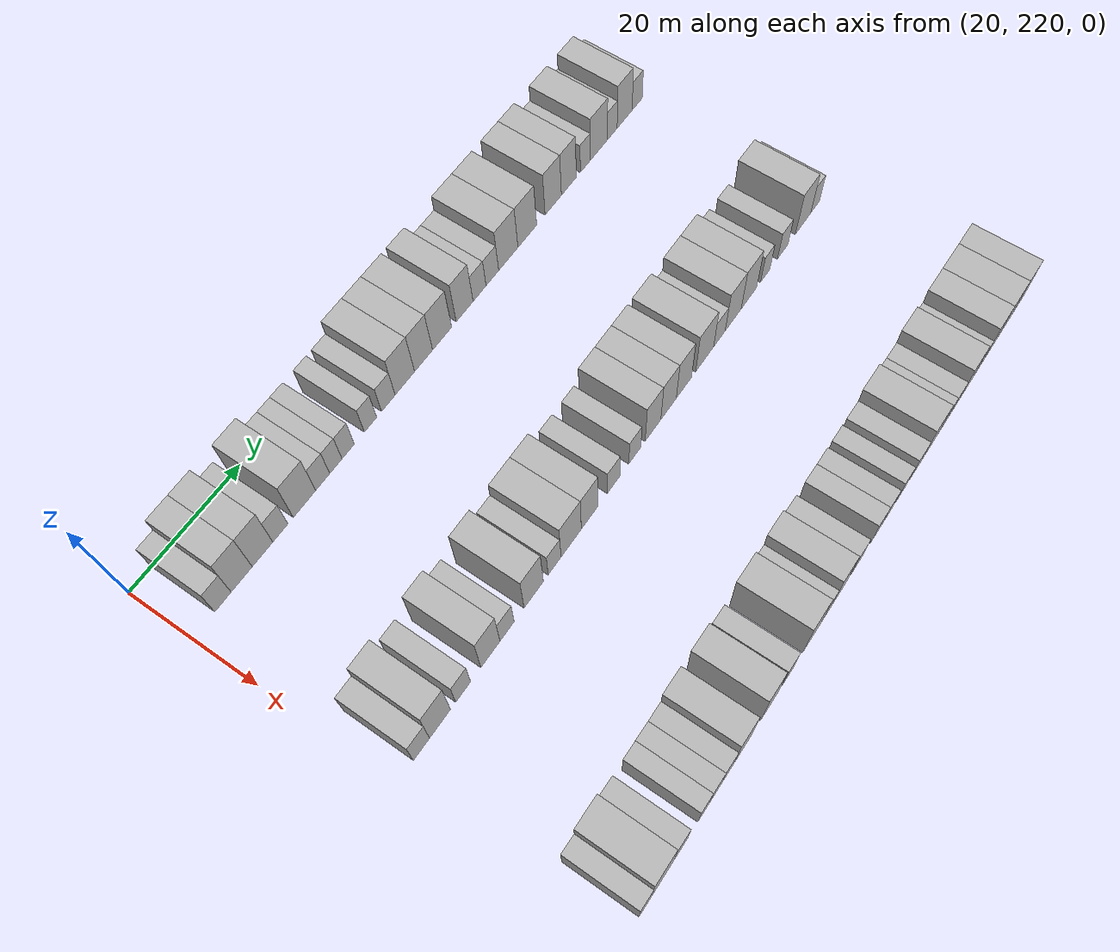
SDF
<sdf version="1.6">
 <world name="default">
  <model name="building_164">
   <static>1</static>
   <pose>25.0000 225.3458 0 0.000000 0.000000 0.000000</pose>
   <link name="link">
    <pose>0 0 3.00 0 0 0</pose>
    <collision name="collision"><geometry><box><size>10.0000 2.9316 6.0000</size></box></geometry></collision>
    <visual name="visual">
     <cast_shadows>0</cast_shadows>
     <geometry><box><size>10.0000 2.9316 6.0000</size></box></geometry>
     <material>
      <script>
       <uri>model://HANNAS_wall/materials/scripts</uri>
       <uri>model://HANNAS_wall/materials/textures</uri>
       <name>vrc/HANNAS_wall</name>
      </script>
     </material>
    </visual>
   </link>
  </model>
  <model name="building_165">
   <static>1</static>
   <pose>25.0000 228.7253 0 0.000000 0.000000 0.000000</pose>
   <link name="link">
    <pose>0 0 4.50 0 0 0</pose>
    <collision name="collision"><geometry><box><size>10.0000 3.8275 9.0000</size></box></geometry></collision>
    <visual name="visual">
     <cast_shadows>0</cast_shadows>
     <geometry><box><size>10.0000 3.8275 9.0000</size></box></geometry>
     <material>
      <script>
       <uri>model://HANNAS_wall/materials/scripts</uri>
       <uri>model://HANNAS_wall/materials/textures</uri>
       <name>vrc/HANNAS_wall</name>
      </script>
     </material>
    </visual>
   </link>
  </model>
  <model name="building_166">
   <static>1</static>
   <pose>25.0000 232.5370 0 0.000000 0.000000 0.000000</pose>
   <link name="link">
    <pose>0 0 4.50 0 0 0</pose>
    <collision name="collision"><geometry><box><size>10.0000 3.7959 9.0000</size></box></geometry></collision>
    <visual name="visual">
     <cast_shadows>0</cast_shadows>
     <geometry><box><size>10.0000 3.7959 9.0000</size></box></geometry>
     <material>
      <script>
       <uri>model://HANNAS_wall/materials/scripts</uri>
       <uri>model://HANNAS_wall/materials/textures</uri>
       <name>vrc/HANNAS_wall</name>
      </script>
     </material>
    </visual>
   </link>
  </model>
  <model name="building_167">
   <static>1</static>
   <pose>25.0000 235.8538 0 0.000000 0.000000 0.000000</pose>
   <link name="link">
    <pose>0 0 3.00 0 0 0</pose>
    <collision name="collision"><geometry><box><size>10.0000 2.8376 6.0000</size></box></geometry></collision>
    <visual name="visual">
     <cast_shadows>0</cast_shadows>
     <geometry><box><size>10.0000 2.8376 6.0000</size></box></geometry>
     <material>
      <script>
       <uri>model://HANNAS_wall/materials/scripts</uri>
       <uri>model://HANNAS_wall/materials/textures</uri>
       <name>vrc/HANNAS_wall</name>
      </script>
     </material>
    </visual>
   </link>
  </model>
  <model name="building_168">
   <static>1</static>
   <pose>25.0000 240.4087 0 0.000000 0.000000 0.000000</pose>
   <link name="link">
    <pose>0 0 4.50 0 0 0</pose>
    <collision name="collision"><geometry><box><size>10.0000 4.2721 9.0000</size></box></geometry></collision>
    <visual name="visual">
     <cast_shadows>0</cast_shadows>
     <geometry><box><size>10.0000 4.2721 9.0000</size></box></geometry>
     <material>
      <script>
       <uri>model://HANNAS_wall/materials/scripts</uri>
       <uri>model://HANNAS_wall/materials/textures</uri>
       <name>vrc/HANNAS_wall</name>
      </script>
     </material>
    </visual>
   </link>
  </model>
  <model name="building_169">
   <static>1</static>
   <pose>25.0000 243.9183 0 0.000000 0.000000 0.000000</pose>
   <link name="link">
    <pose>0 0 3.00 0 0 0</pose>
    <collision name="collision"><geometry><box><size>10.0000 2.7472 6.0000</size></box></geometry></collision>
    <visual name="visual">
     <cast_shadows>0</cast_shadows>
     <geometry><box><size>10.0000 2.7472 6.0000</size></box></geometry>
     <material>
      <script>
       <uri>model://HANNAS_wall/materials/scripts</uri>
       <uri>model://HANNAS_wall/materials/textures</uri>
       <name>vrc/HANNAS_wall</name>
      </script>
     </material>
    </visual>
   </link>
  </model>
  <model name="building_170">
   <static>1</static>
   <pose>25.0000 246.4943 0 0.000000 0.000000 0.000000</pose>
   <link name="link">
    <pose>0 0 3.00 0 0 0</pose>
    <collision name="collision"><geometry><box><size>10.0000 2.4048 6.0000</size></box></geometry></collision>
    <visual name="visual">
     <cast_shadows>0</cast_shadows>
     <geometry><box><size>10.0000 2.4048 6.0000</size></box></geometry>
     <material>
      <script>
       <uri>model://HANNAS_wall/materials/scripts</uri>
       <uri>model://HANNAS_wall/materials/textures</uri>
       <name>vrc/HANNAS_wall</name>
      </script>
     </material>
    </visual>
   </link>
  </model>
  <model name="building_171">
   <static>1</static>
   <pose>25.0000 248.9232 0 0.000000 0.000000 0.000000</pose>
   <link name="link">
    <pose>0 0 3.00 0 0 0</pose>
    <collision name="collision"><geometry><box><size>10.0000 2.4529 6.0000</size></box></geometry></collision>
    <visual name="visual">
     <cast_shadows>0</cast_shadows>
     <geometry><box><size>10.0000 2.4529 6.0000</size></box></geometry>
     <material>
      <script>
       <uri>model://HANNAS_wall/materials/scripts</uri>
       <uri>model://HANNAS_wall/materials/textures</uri>
       <name>vrc/HANNAS_wall</name>
      </script>
     </material>
    </visual>
   </link>
  </model>
  <model name="building_172">
   <static>1</static>
   <pose>25.0000 253.3971 0 0.000000 0.000000 0.000000</pose>
   <link name="link">
    <pose>0 0 3.00 0 0 0</pose>
    <collision name="collision"><geometry><box><size>10.0000 2.4949 6.0000</size></box></geometry></collision>
    <visual name="visual">
     <cast_shadows>0</cast_shadows>
     <geometry><box><size>10.0000 2.4949 6.0000</size></box></geometry>
     <material>
      <script>
       <uri>model://HANNAS_wall/materials/scripts</uri>
       <uri>model://HANNAS_wall/materials/textures</uri>
       <name>vrc/HANNAS_wall</name>
      </script>
     </material>
    </visual>
   </link>
  </model>
  <model name="building_173">
   <static>1</static>
   <pose>25.0000 257.0425 0 0.000000 0.000000 0.000000</pose>
   <link name="link">
    <pose>0 0 3.00 0 0 0</pose>
    <collision name="collision"><geometry><box><size>10.0000 2.7958 6.0000</size></box></geometry></collision>
    <visual name="visual">
     <cast_shadows>0</cast_shadows>
     <geometry><box><size>10.0000 2.7958 6.0000</size></box></geometry>
     <material>
      <script>
       <uri>model://HANNAS_wall/materials/scripts</uri>
       <uri>model://HANNAS_wall/materials/textures</uri>
       <name>vrc/HANNAS_wall</name>
      </script>
     </material>
    </visual>
   </link>
  </model>
  <model name="building_174">
   <static>1</static>
   <pose>25.0000 260.4753 0 0.000000 0.000000 0.000000</pose>
   <link name="link">
    <pose>0 0 4.50 0 0 0</pose>
    <collision name="collision"><geometry><box><size>10.0000 4.0699 9.0000</size></box></geometry></collision>
    <visual name="visual">
     <cast_shadows>0</cast_shadows>
     <geometry><box><size>10.0000 4.0699 9.0000</size></box></geometry>
     <material>
      <script>
       <uri>model://HANNAS_wall/materials/scripts</uri>
       <uri>model://HANNAS_wall/materials/textures</uri>
       <name>vrc/HANNAS_wall</name>
      </script>
     </material>
    </visual>
   </link>
  </model>
  <model name="building_175">
   <static>1</static>
   <pose>25.0000 264.4201 0 0.000000 0.000000 0.000000</pose>
   <link name="link">
    <pose>0 0 4.50 0 0 0</pose>
    <collision name="collision"><geometry><box><size>10.0000 3.8196 9.0000</size></box></geometry></collision>
    <visual name="visual">
     <cast_shadows>0</cast_shadows>
     <geometry><box><size>10.0000 3.8196 9.0000</size></box></geometry>
     <material>
      <script>
       <uri>model://HANNAS_wall/materials/scripts</uri>
       <uri>model://HANNAS_wall/materials/textures</uri>
       <name>vrc/HANNAS_wall</name>
      </script>
     </material>
    </visual>
   </link>
  </model>
  <model name="building_176">
   <static>1</static>
   <pose>25.0000 268.3916 0 0.000000 0.000000 0.000000</pose>
   <link name="link">
    <pose>0 0 4.50 0 0 0</pose>
    <collision name="collision"><geometry><box><size>10.0000 4.1234 9.0000</size></box></geometry></collision>
    <visual name="visual">
     <cast_shadows>0</cast_shadows>
     <geometry><box><size>10.0000 4.1234 9.0000</size></box></geometry>
     <material>
      <script>
       <uri>model://HANNAS_wall/materials/scripts</uri>
       <uri>model://HANNAS_wall/materials/textures</uri>
       <name>vrc/HANNAS_wall</name>
      </script>
     </material>
    </visual>
   </link>
  </model>
  <model name="building_177">
   <static>1</static>
   <pose>25.0000 273.3096 0 0.000000 0.000000 0.000000</pose>
   <link name="link">
    <pose>0 0 4.50 0 0 0</pose>
    <collision name="collision"><geometry><box><size>10.0000 3.7126 9.0000</size></box></geometry></collision>
    <visual name="visual">
     <cast_shadows>0</cast_shadows>
     <geometry><box><size>10.0000 3.7126 9.0000</size></box></geometry>
     <material>
      <script>
       <uri>model://HANNAS_wall/materials/scripts</uri>
       <uri>model://HANNAS_wall/materials/textures</uri>
       <name>vrc/HANNAS_wall</name>
      </script>
     </material>
    </visual>
   </link>
  </model>
  <model name="building_178">
   <static>1</static>
   <pose>25.0000 276.6211 0 0.000000 0.000000 0.000000</pose>
   <link name="link">
    <pose>0 0 3.00 0 0 0</pose>
    <collision name="collision"><geometry><box><size>10.0000 2.9104 6.0000</size></box></geometry></collision>
    <visual name="visual">
     <cast_shadows>0</cast_shadows>
     <geometry><box><size>10.0000 2.9104 6.0000</size></box></geometry>
     <material>
      <script>
       <uri>model://HANNAS_wall/materials/scripts</uri>
       <uri>model://HANNAS_wall/materials/textures</uri>
       <name>vrc/HANNAS_wall</name>
      </script>
     </material>
    </visual>
   </link>
  </model>
  <model name="building_179">
   <static>1</static>
   <pose>25.0000 279.5084 0 0.000000 0.000000 0.000000</pose>
   <link name="link">
    <pose>0 0 3.00 0 0 0</pose>
    <collision name="collision"><geometry><box><size>10.0000 2.8643 6.0000</size></box></geometry></collision>
    <visual name="visual">
     <cast_shadows>0</cast_shadows>
     <geometry><box><size>10.0000 2.8643 6.0000</size></box></geometry>
     <material>
      <script>
       <uri>model://HANNAS_wall/materials/scripts</uri>
       <uri>model://HANNAS_wall/materials/textures</uri>
       <name>vrc/HANNAS_wall</name>
      </script>
     </material>
    </visual>
   </link>
  </model>
  <model name="building_180">
   <static>1</static>
   <pose>25.0000 283.1532 0 0.000000 0.000000 0.000000</pose>
   <link name="link">
    <pose>0 0 4.50 0 0 0</pose>
    <collision name="collision"><geometry><box><size>10.0000 4.4253 9.0000</size></box></geometry></collision>
    <visual name="visual">
     <cast_shadows>0</cast_shadows>
     <geometry><box><size>10.0000 4.4253 9.0000</size></box></geometry>
     <material>
      <script>
       <uri>model://HANNAS_wall/materials/scripts</uri>
       <uri>model://HANNAS_wall/materials/textures</uri>
       <name>vrc/HANNAS_wall</name>
      </script>
     </material>
    </visual>
   </link>
  </model>
  <model name="building_181">
   <static>1</static>
   <pose>25.0000 287.5523 0 0.000000 0.000000 0.000000</pose>
   <link name="link">
    <pose>0 0 4.50 0 0 0</pose>
    <collision name="collision"><geometry><box><size>10.0000 4.3728 9.0000</size></box></geometry></collision>
    <visual name="visual">
     <cast_shadows>0</cast_shadows>
     <geometry><box><size>10.0000 4.3728 9.0000</size></box></geometry>
     <material>
      <script>
       <uri>model://HANNAS_wall/materials/scripts</uri>
       <uri>model://HANNAS_wall/materials/textures</uri>
       <name>vrc/HANNAS_wall</name>
      </script>
     </material>
    </visual>
   </link>
  </model>
  <model name="building_182">
   <static>1</static>
   <pose>25.0000 293.6979 0 0.000000 0.000000 0.000000</pose>
   <link name="link">
    <pose>0 0 4.50 0 0 0</pose>
    <collision name="collision"><geometry><box><size>10.0000 3.9183 9.0000</size></box></geometry></collision>
    <visual name="visual">
     <cast_shadows>0</cast_shadows>
     <geometry><box><size>10.0000 3.9183 9.0000</size></box></geometry>
     <material>
      <script>
       <uri>model://HANNAS_wall/materials/scripts</uri>
       <uri>model://HANNAS_wall/materials/textures</uri>
       <name>vrc/HANNAS_wall</name>
      </script>
     </material>
    </visual>
   </link>
  </model>
  <model name="building_183">
   <static>1</static>
   <pose>25.0000 297.4827 0 0.000000 0.000000 0.000000</pose>
   <link name="link">
    <pose>0 0 4.50 0 0 0</pose>
    <collision name="collision"><geometry><box><size>10.0000 3.6513 9.0000</size></box></geometry></collision>
    <visual name="visual">
     <cast_shadows>0</cast_shadows>
     <geometry><box><size>10.0000 3.6513 9.0000</size></box></geometry>
     <material>
      <script>
       <uri>model://HANNAS_wall/materials/scripts</uri>
       <uri>model://HANNAS_wall/materials/textures</uri>
       <name>vrc/HANNAS_wall</name>
      </script>
     </material>
    </visual>
   </link>
  </model>
  <model name="building_184">
   <static>1</static>
   <pose>25.0000 301.5531 0 0.000000 0.000000 0.000000</pose>
   <link name="link">
    <pose>0 0 3.00 0 0 0</pose>
    <collision name="collision"><geometry><box><size>10.0000 2.4895 6.0000</size></box></geometry></collision>
    <visual name="visual">
     <cast_shadows>0</cast_shadows>
     <geometry><box><size>10.0000 2.4895 6.0000</size></box></geometry>
     <material>
      <script>
       <uri>model://HANNAS_wall/materials/scripts</uri>
       <uri>model://HANNAS_wall/materials/textures</uri>
       <name>vrc/HANNAS_wall</name>
      </script>
     </material>
    </visual>
   </link>
  </model>
  <model name="building_185">
   <static>1</static>
   <pose>25.0000 304.9267 0 0.000000 0.000000 0.000000</pose>
   <link name="link">
    <pose>0 0 4.50 0 0 0</pose>
    <collision name="collision"><geometry><box><size>10.0000 4.2578 9.0000</size></box></geometry></collision>
    <visual name="visual">
     <cast_shadows>0</cast_shadows>
     <geometry><box><size>10.0000 4.2578 9.0000</size></box></geometry>
     <material>
      <script>
       <uri>model://HANNAS_wall/materials/scripts</uri>
       <uri>model://HANNAS_wall/materials/textures</uri>
       <name>vrc/HANNAS_wall</name>
      </script>
     </material>
    </visual>
   </link>
  </model>
  <model name="building_186">
   <static>1</static>
   <pose>25.0000 308.2860 0 0.000000 0.000000 0.000000</pose>
   <link name="link">
    <pose>0 0 3.00 0 0 0</pose>
    <collision name="collision"><geometry><box><size>10.0000 2.4609 6.0000</size></box></geometry></collision>
    <visual name="visual">
     <cast_shadows>0</cast_shadows>
     <geometry><box><size>10.0000 2.4609 6.0000</size></box></geometry>
     <material>
      <script>
       <uri>model://HANNAS_wall/materials/scripts</uri>
       <uri>model://HANNAS_wall/materials/textures</uri>
       <name>vrc/HANNAS_wall</name>
      </script>
     </material>
    </visual>
   </link>
  </model>
  <model name="building_187">
   <static>1</static>
   <pose>25.0000 311.4510 0 0.000000 0.000000 0.000000</pose>
   <link name="link">
    <pose>0 0 4.50 0 0 0</pose>
    <collision name="collision"><geometry><box><size>10.0000 3.8692 9.0000</size></box></geometry></collision>
    <visual name="visual">
     <cast_shadows>0</cast_shadows>
     <geometry><box><size>10.0000 3.8692 9.0000</size></box></geometry>
     <material>
      <script>
       <uri>model://HANNAS_wall/materials/scripts</uri>
       <uri>model://HANNAS_wall/materials/textures</uri>
       <name>vrc/HANNAS_wall</name>
      </script>
     </material>
    </visual>
   </link>
  </model>
  <model name="building_188">
   <static>1</static>
   <pose>25.0000 314.6919 0 0.000000 0.000000 0.000000</pose>
   <link name="link">
    <pose>0 0 3.00 0 0 0</pose>
    <collision name="collision"><geometry><box><size>10.0000 2.6126 6.0000</size></box></geometry></collision>
    <visual name="visual">
     <cast_shadows>0</cast_shadows>
     <geometry><box><size>10.0000 2.6126 6.0000</size></box></geometry>
     <material>
      <script>
       <uri>model://HANNAS_wall/materials/scripts</uri>
       <uri>model://HANNAS_wall/materials/textures</uri>
       <name>vrc/HANNAS_wall</name>
      </script>
     </material>
    </visual>
   </link>
  </model>
  <model name="building_385">
   <static>1</static>
   <pose>55.0000 224.7556 0 0.000000 0.000000 0.000000</pose>
   <link name="link">
    <pose>0 0 3.00 0 0 0</pose>
    <collision name="collision"><geometry><box><size>10.0000 2.9897 6.0000</size></box></geometry></collision>
    <visual name="visual">
     <cast_shadows>0</cast_shadows>
     <geometry><box><size>10.0000 2.9897 6.0000</size></box></geometry>
     <material>
      <script>
       <uri>model://HANNAS_wall/materials/scripts</uri>
       <uri>model://HANNAS_wall/materials/textures</uri>
       <name>vrc/HANNAS_wall</name>
      </script>
     </material>
    </visual>
   </link>
  </model>
  <model name="building_386">
   <static>1</static>
   <pose>55.0000 228.2141 0 0.000000 0.000000 0.000000</pose>
   <link name="link">
    <pose>0 0 4.50 0 0 0</pose>
    <collision name="collision"><geometry><box><size>10.0000 3.9271 9.0000</size></box></geometry></collision>
    <visual name="visual">
     <cast_shadows>0</cast_shadows>
     <geometry><box><size>10.0000 3.9271 9.0000</size></box></geometry>
     <material>
      <script>
       <uri>model://HANNAS_wall/materials/scripts</uri>
       <uri>model://HANNAS_wall/materials/textures</uri>
       <name>vrc/HANNAS_wall</name>
      </script>
     </material>
    </visual>
   </link>
  </model>
  <model name="building_387">
   <static>1</static>
   <pose>55.0000 232.6074 0 0.000000 0.000000 0.000000</pose>
   <link name="link">
    <pose>0 0 3.00 0 0 0</pose>
    <collision name="collision"><geometry><box><size>10.0000 2.8596 6.0000</size></box></geometry></collision>
    <visual name="visual">
     <cast_shadows>0</cast_shadows>
     <geometry><box><size>10.0000 2.8596 6.0000</size></box></geometry>
     <material>
      <script>
       <uri>model://HANNAS_wall/materials/scripts</uri>
       <uri>model://HANNAS_wall/materials/textures</uri>
       <name>vrc/HANNAS_wall</name>
      </script>
     </material>
    </visual>
   </link>
  </model>
  <model name="building_388">
   <static>1</static>
   <pose>55.0000 237.9253 0 0.000000 0.000000 0.000000</pose>
   <link name="link">
    <pose>0 0 4.50 0 0 0</pose>
    <collision name="collision"><geometry><box><size>10.0000 3.7762 9.0000</size></box></geometry></collision>
    <visual name="visual">
     <cast_shadows>0</cast_shadows>
     <geometry><box><size>10.0000 3.7762 9.0000</size></box></geometry>
     <material>
      <script>
       <uri>model://HANNAS_wall/materials/scripts</uri>
       <uri>model://HANNAS_wall/materials/textures</uri>
       <name>vrc/HANNAS_wall</name>
      </script>
     </material>
    </visual>
   </link>
  </model>
  <model name="building_389">
   <static>1</static>
   <pose>55.0000 241.2348 0 0.000000 0.000000 0.000000</pose>
   <link name="link">
    <pose>0 0 3.00 0 0 0</pose>
    <collision name="collision"><geometry><box><size>10.0000 2.8427 6.0000</size></box></geometry></collision>
    <visual name="visual">
     <cast_shadows>0</cast_shadows>
     <geometry><box><size>10.0000 2.8427 6.0000</size></box></geometry>
     <material>
      <script>
       <uri>model://HANNAS_wall/materials/scripts</uri>
       <uri>model://HANNAS_wall/materials/textures</uri>
       <name>vrc/HANNAS_wall</name>
      </script>
     </material>
    </visual>
   </link>
  </model>
  <model name="building_390">
   <static>1</static>
   <pose>55.0000 246.6345 0 0.000000 0.000000 0.000000</pose>
   <link name="link">
    <pose>0 0 4.50 0 0 0</pose>
    <collision name="collision"><geometry><box><size>10.0000 3.9566 9.0000</size></box></geometry></collision>
    <visual name="visual">
     <cast_shadows>0</cast_shadows>
     <geometry><box><size>10.0000 3.9566 9.0000</size></box></geometry>
     <material>
      <script>
       <uri>model://HANNAS_wall/materials/scripts</uri>
       <uri>model://HANNAS_wall/materials/textures</uri>
       <name>vrc/HANNAS_wall</name>
      </script>
     </material>
    </visual>
   </link>
  </model>
  <model name="building_391">
   <static>1</static>
   <pose>55.0000 250.9610 0 0.000000 0.000000 0.000000</pose>
   <link name="link">
    <pose>0 0 3.00 0 0 0</pose>
    <collision name="collision"><geometry><box><size>10.0000 2.6965 6.0000</size></box></geometry></collision>
    <visual name="visual">
     <cast_shadows>0</cast_shadows>
     <geometry><box><size>10.0000 2.6965 6.0000</size></box></geometry>
     <material>
      <script>
       <uri>model://HANNAS_wall/materials/scripts</uri>
       <uri>model://HANNAS_wall/materials/textures</uri>
       <name>vrc/HANNAS_wall</name>
      </script>
     </material>
    </visual>
   </link>
  </model>
  <model name="building_392">
   <static>1</static>
   <pose>55.0000 254.4693 0 0.000000 0.000000 0.000000</pose>
   <link name="link">
    <pose>0 0 4.50 0 0 0</pose>
    <collision name="collision"><geometry><box><size>10.0000 4.3201 9.0000</size></box></geometry></collision>
    <visual name="visual">
     <cast_shadows>0</cast_shadows>
     <geometry><box><size>10.0000 4.3201 9.0000</size></box></geometry>
     <material>
      <script>
       <uri>model://HANNAS_wall/materials/scripts</uri>
       <uri>model://HANNAS_wall/materials/textures</uri>
       <name>vrc/HANNAS_wall</name>
      </script>
     </material>
    </visual>
   </link>
  </model>
  <model name="building_393">
   <static>1</static>
   <pose>55.0000 258.4651 0 0.000000 0.000000 0.000000</pose>
   <link name="link">
    <pose>0 0 4.50 0 0 0</pose>
    <collision name="collision"><geometry><box><size>10.0000 3.6714 9.0000</size></box></geometry></collision>
    <visual name="visual">
     <cast_shadows>0</cast_shadows>
     <geometry><box><size>10.0000 3.6714 9.0000</size></box></geometry>
     <material>
      <script>
       <uri>model://HANNAS_wall/materials/scripts</uri>
       <uri>model://HANNAS_wall/materials/textures</uri>
       <name>vrc/HANNAS_wall</name>
      </script>
     </material>
    </visual>
   </link>
  </model>
  <model name="building_394">
   <static>1</static>
   <pose>55.0000 263.6895 0 0.000000 0.000000 0.000000</pose>
   <link name="link">
    <pose>0 0 3.00 0 0 0</pose>
    <collision name="collision"><geometry><box><size>10.0000 2.7773 6.0000</size></box></geometry></collision>
    <visual name="visual">
     <cast_shadows>0</cast_shadows>
     <geometry><box><size>10.0000 2.7773 6.0000</size></box></geometry>
     <material>
      <script>
       <uri>model://HANNAS_wall/materials/scripts</uri>
       <uri>model://HANNAS_wall/materials/textures</uri>
       <name>vrc/HANNAS_wall</name>
      </script>
     </material>
    </visual>
   </link>
  </model>
  <model name="building_395">
   <static>1</static>
   <pose>55.0000 268.4390 0 0.000000 0.000000 0.000000</pose>
   <link name="link">
    <pose>0 0 3.00 0 0 0</pose>
    <collision name="collision"><geometry><box><size>10.0000 2.7217 6.0000</size></box></geometry></collision>
    <visual name="visual">
     <cast_shadows>0</cast_shadows>
     <geometry><box><size>10.0000 2.7217 6.0000</size></box></geometry>
     <material>
      <script>
       <uri>model://HANNAS_wall/materials/scripts</uri>
       <uri>model://HANNAS_wall/materials/textures</uri>
       <name>vrc/HANNAS_wall</name>
      </script>
     </material>
    </visual>
   </link>
  </model>
  <model name="building_396">
   <static>1</static>
   <pose>55.0000 272.6144 0 0.000000 0.000000 0.000000</pose>
   <link name="link">
    <pose>0 0 4.50 0 0 0</pose>
    <collision name="collision"><geometry><box><size>10.0000 3.6291 9.0000</size></box></geometry></collision>
    <visual name="visual">
     <cast_shadows>0</cast_shadows>
     <geometry><box><size>10.0000 3.6291 9.0000</size></box></geometry>
     <material>
      <script>
       <uri>model://HANNAS_wall/materials/scripts</uri>
       <uri>model://HANNAS_wall/materials/textures</uri>
       <name>vrc/HANNAS_wall</name>
      </script>
     </material>
    </visual>
   </link>
  </model>
  <model name="building_397">
   <static>1</static>
   <pose>55.0000 276.2458 0 0.000000 0.000000 0.000000</pose>
   <link name="link">
    <pose>0 0 4.50 0 0 0</pose>
    <collision name="collision"><geometry><box><size>10.0000 3.6337 9.0000</size></box></geometry></collision>
    <visual name="visual">
     <cast_shadows>0</cast_shadows>
     <geometry><box><size>10.0000 3.6337 9.0000</size></box></geometry>
     <material>
      <script>
       <uri>model://HANNAS_wall/materials/scripts</uri>
       <uri>model://HANNAS_wall/materials/textures</uri>
       <name>vrc/HANNAS_wall</name>
      </script>
     </material>
    </visual>
   </link>
  </model>
  <model name="building_398">
   <static>1</static>
   <pose>55.0000 279.8744 0 0.000000 0.000000 0.000000</pose>
   <link name="link">
    <pose>0 0 4.50 0 0 0</pose>
    <collision name="collision"><geometry><box><size>10.0000 3.6236 9.0000</size></box></geometry></collision>
    <visual name="visual">
     <cast_shadows>0</cast_shadows>
     <geometry><box><size>10.0000 3.6236 9.0000</size></box></geometry>
     <material>
      <script>
       <uri>model://HANNAS_wall/materials/scripts</uri>
       <uri>model://HANNAS_wall/materials/textures</uri>
       <name>vrc/HANNAS_wall</name>
      </script>
     </material>
    </visual>
   </link>
  </model>
  <model name="building_399">
   <static>1</static>
   <pose>55.0000 284.8730 0 0.000000 0.000000 0.000000</pose>
   <link name="link">
    <pose>0 0 4.50 0 0 0</pose>
    <collision name="collision"><geometry><box><size>10.0000 4.3736 9.0000</size></box></geometry></collision>
    <visual name="visual">
     <cast_shadows>0</cast_shadows>
     <geometry><box><size>10.0000 4.3736 9.0000</size></box></geometry>
     <material>
      <script>
       <uri>model://HANNAS_wall/materials/scripts</uri>
       <uri>model://HANNAS_wall/materials/textures</uri>
       <name>vrc/HANNAS_wall</name>
      </script>
     </material>
    </visual>
   </link>
  </model>
  <model name="building_400">
   <static>1</static>
   <pose>55.0000 288.4946 0 0.000000 0.000000 0.000000</pose>
   <link name="link">
    <pose>0 0 3.00 0 0 0</pose>
    <collision name="collision"><geometry><box><size>10.0000 2.8696 6.0000</size></box></geometry></collision>
    <visual name="visual">
     <cast_shadows>0</cast_shadows>
     <geometry><box><size>10.0000 2.8696 6.0000</size></box></geometry>
     <material>
      <script>
       <uri>model://HANNAS_wall/materials/scripts</uri>
       <uri>model://HANNAS_wall/materials/textures</uri>
       <name>vrc/HANNAS_wall</name>
      </script>
     </material>
    </visual>
   </link>
  </model>
  <model name="building_401">
   <static>1</static>
   <pose>55.0000 291.9399 0 0.000000 0.000000 0.000000</pose>
   <link name="link">
    <pose>0 0 4.50 0 0 0</pose>
    <collision name="collision"><geometry><box><size>10.0000 4.0210 9.0000</size></box></geometry></collision>
    <visual name="visual">
     <cast_shadows>0</cast_shadows>
     <geometry><box><size>10.0000 4.0210 9.0000</size></box></geometry>
     <material>
      <script>
       <uri>model://HANNAS_wall/materials/scripts</uri>
       <uri>model://HANNAS_wall/materials/textures</uri>
       <name>vrc/HANNAS_wall</name>
      </script>
     </material>
    </visual>
   </link>
  </model>
  <model name="building_402">
   <static>1</static>
   <pose>55.0000 295.9284 0 0.000000 0.000000 0.000000</pose>
   <link name="link">
    <pose>0 0 4.50 0 0 0</pose>
    <collision name="collision"><geometry><box><size>10.0000 3.9559 9.0000</size></box></geometry></collision>
    <visual name="visual">
     <cast_shadows>0</cast_shadows>
     <geometry><box><size>10.0000 3.9559 9.0000</size></box></geometry>
     <material>
      <script>
       <uri>model://HANNAS_wall/materials/scripts</uri>
       <uri>model://HANNAS_wall/materials/textures</uri>
       <name>vrc/HANNAS_wall</name>
      </script>
     </material>
    </visual>
   </link>
  </model>
  <model name="building_403">
   <static>1</static>
   <pose>55.0000 300.1230 0 0.000000 0.000000 0.000000</pose>
   <link name="link">
    <pose>0 0 3.00 0 0 0</pose>
    <collision name="collision"><geometry><box><size>10.0000 2.4333 6.0000</size></box></geometry></collision>
    <visual name="visual">
     <cast_shadows>0</cast_shadows>
     <geometry><box><size>10.0000 2.4333 6.0000</size></box></geometry>
     <material>
      <script>
       <uri>model://HANNAS_wall/materials/scripts</uri>
       <uri>model://HANNAS_wall/materials/textures</uri>
       <name>vrc/HANNAS_wall</name>
      </script>
     </material>
    </visual>
   </link>
  </model>
  <model name="building_404">
   <static>1</static>
   <pose>55.0000 304.7283 0 0.000000 0.000000 0.000000</pose>
   <link name="link">
    <pose>0 0 3.00 0 0 0</pose>
    <collision name="collision"><geometry><box><size>10.0000 2.7772 6.0000</size></box></geometry></collision>
    <visual name="visual">
     <cast_shadows>0</cast_shadows>
     <geometry><box><size>10.0000 2.7772 6.0000</size></box></geometry>
     <material>
      <script>
       <uri>model://HANNAS_wall/materials/scripts</uri>
       <uri>model://HANNAS_wall/materials/textures</uri>
       <name>vrc/HANNAS_wall</name>
      </script>
     </material>
    </visual>
   </link>
  </model>
  <model name="building_405">
   <static>1</static>
   <pose>55.0000 310.1755 0 0.000000 0.000000 0.000000</pose>
   <link name="link">
    <pose>0 0 4.50 0 0 0</pose>
    <collision name="collision"><geometry><box><size>10.0000 4.1173 9.0000</size></box></geometry></collision>
    <visual name="visual">
     <cast_shadows>0</cast_shadows>
     <geometry><box><size>10.0000 4.1173 9.0000</size></box></geometry>
     <material>
      <script>
       <uri>model://HANNAS_wall/materials/scripts</uri>
       <uri>model://HANNAS_wall/materials/textures</uri>
       <name>vrc/HANNAS_wall</name>
      </script>
     </material>
    </visual>
   </link>
  </model>
  <model name="building_406">
   <static>1</static>
   <pose>55.0000 313.4459 0 0.000000 0.000000 0.000000</pose>
   <link name="link">
    <pose>0 0 3.00 0 0 0</pose>
    <collision name="collision"><geometry><box><size>10.0000 2.4234 6.0000</size></box></geometry></collision>
    <visual name="visual">
     <cast_shadows>0</cast_shadows>
     <geometry><box><size>10.0000 2.4234 6.0000</size></box></geometry>
     <material>
      <script>
       <uri>model://HANNAS_wall/materials/scripts</uri>
       <uri>model://HANNAS_wall/materials/textures</uri>
       <name>vrc/HANNAS_wall</name>
      </script>
     </material>
    </visual>
   </link>
  </model>
  <model name="building_611">
   <static>1</static>
   <pose>85.0000 224.9220 0 0.000000 0.000000 0.000000</pose>
   <link name="link">
    <pose>0 0 3.00 0 0 0</pose>
    <collision name="collision"><geometry><box><size>10.0000 2.5479 6.0000</size></box></geometry></collision>
    <visual name="visual">
     <cast_shadows>0</cast_shadows>
     <geometry><box><size>10.0000 2.5479 6.0000</size></box></geometry>
     <material>
      <script>
       <uri>model://HANNAS_wall/materials/scripts</uri>
       <uri>model://HANNAS_wall/materials/textures</uri>
       <name>vrc/HANNAS_wall</name>
      </script>
     </material>
    </visual>
   </link>
  </model>
  <model name="building_612">
   <static>1</static>
   <pose>85.0000 228.3581 0 0.000000 0.000000 0.000000</pose>
   <link name="link">
    <pose>0 0 4.50 0 0 0</pose>
    <collision name="collision"><geometry><box><size>10.0000 4.3243 9.0000</size></box></geometry></collision>
    <visual name="visual">
     <cast_shadows>0</cast_shadows>
     <geometry><box><size>10.0000 4.3243 9.0000</size></box></geometry>
     <material>
      <script>
       <uri>model://HANNAS_wall/materials/scripts</uri>
       <uri>model://HANNAS_wall/materials/textures</uri>
       <name>vrc/HANNAS_wall</name>
      </script>
     </material>
    </visual>
   </link>
  </model>
  <model name="building_613">
   <static>1</static>
   <pose>85.0000 231.9786 0 0.000000 0.000000 0.000000</pose>
   <link name="link">
    <pose>0 0 3.00 0 0 0</pose>
    <collision name="collision"><geometry><box><size>10.0000 2.9167 6.0000</size></box></geometry></collision>
    <visual name="visual">
     <cast_shadows>0</cast_shadows>
     <geometry><box><size>10.0000 2.9167 6.0000</size></box></geometry>
     <material>
      <script>
       <uri>model://HANNAS_wall/materials/scripts</uri>
       <uri>model://HANNAS_wall/materials/textures</uri>
       <name>vrc/HANNAS_wall</name>
      </script>
     </material>
    </visual>
   </link>
  </model>
  <model name="building_614">
   <static>1</static>
   <pose>85.0000 236.6726 0 0.000000 0.000000 0.000000</pose>
   <link name="link">
    <pose>0 0 3.00 0 0 0</pose>
    <collision name="collision"><geometry><box><size>10.0000 2.4713 6.0000</size></box></geometry></collision>
    <visual name="visual">
     <cast_shadows>0</cast_shadows>
     <geometry><box><size>10.0000 2.4713 6.0000</size></box></geometry>
     <material>
      <script>
       <uri>model://HANNAS_wall/materials/scripts</uri>
       <uri>model://HANNAS_wall/materials/textures</uri>
       <name>vrc/HANNAS_wall</name>
      </script>
     </material>
    </visual>
   </link>
  </model>
  <model name="building_615">
   <static>1</static>
   <pose>85.0000 239.1830 0 0.000000 0.000000 0.000000</pose>
   <link name="link">
    <pose>0 0 3.00 0 0 0</pose>
    <collision name="collision"><geometry><box><size>10.0000 2.5496 6.0000</size></box></geometry></collision>
    <visual name="visual">
     <cast_shadows>0</cast_shadows>
     <geometry><box><size>10.0000 2.5496 6.0000</size></box></geometry>
     <material>
      <script>
       <uri>model://HANNAS_wall/materials/scripts</uri>
       <uri>model://HANNAS_wall/materials/textures</uri>
       <name>vrc/HANNAS_wall</name>
      </script>
     </material>
    </visual>
   </link>
  </model>
  <model name="building_616">
   <static>1</static>
   <pose>85.0000 241.7670 0 0.000000 0.000000 0.000000</pose>
   <link name="link">
    <pose>0 0 3.00 0 0 0</pose>
    <collision name="collision"><geometry><box><size>10.0000 2.6183 6.0000</size></box></geometry></collision>
    <visual name="visual">
     <cast_shadows>0</cast_shadows>
     <geometry><box><size>10.0000 2.6183 6.0000</size></box></geometry>
     <material>
      <script>
       <uri>model://HANNAS_wall/materials/scripts</uri>
       <uri>model://HANNAS_wall/materials/textures</uri>
       <name>vrc/HANNAS_wall</name>
      </script>
     </material>
    </visual>
   </link>
  </model>
  <model name="building_617">
   <static>1</static>
   <pose>85.0000 244.9639 0 0.000000 0.000000 0.000000</pose>
   <link name="link">
    <pose>0 0 4.50 0 0 0</pose>
    <collision name="collision"><geometry><box><size>10.0000 3.7756 9.0000</size></box></geometry></collision>
    <visual name="visual">
     <cast_shadows>0</cast_shadows>
     <geometry><box><size>10.0000 3.7756 9.0000</size></box></geometry>
     <material>
      <script>
       <uri>model://HANNAS_wall/materials/scripts</uri>
       <uri>model://HANNAS_wall/materials/textures</uri>
       <name>vrc/HANNAS_wall</name>
      </script>
     </material>
    </visual>
   </link>
  </model>
  <model name="building_618">
   <static>1</static>
   <pose>85.0000 250.7783 0 0.000000 0.000000 0.000000</pose>
   <link name="link">
    <pose>0 0 4.50 0 0 0</pose>
    <collision name="collision"><geometry><box><size>10.0000 3.8531 9.0000</size></box></geometry></collision>
    <visual name="visual">
     <cast_shadows>0</cast_shadows>
     <geometry><box><size>10.0000 3.8531 9.0000</size></box></geometry>
     <material>
      <script>
       <uri>model://HANNAS_wall/materials/scripts</uri>
       <uri>model://HANNAS_wall/materials/textures</uri>
       <name>vrc/HANNAS_wall</name>
      </script>
     </material>
    </visual>
   </link>
  </model>
  <model name="building_619">
   <static>1</static>
   <pose>85.0000 255.0442 0 0.000000 0.000000 0.000000</pose>
   <link name="link">
    <pose>0 0 3.00 0 0 0</pose>
    <collision name="collision"><geometry><box><size>10.0000 2.6787 6.0000</size></box></geometry></collision>
    <visual name="visual">
     <cast_shadows>0</cast_shadows>
     <geometry><box><size>10.0000 2.6787 6.0000</size></box></geometry>
     <material>
      <script>
       <uri>model://HANNAS_wall/materials/scripts</uri>
       <uri>model://HANNAS_wall/materials/textures</uri>
       <name>vrc/HANNAS_wall</name>
      </script>
     </material>
    </visual>
   </link>
  </model>
  <model name="building_620">
   <static>1</static>
   <pose>85.0000 260.5316 0 0.000000 0.000000 0.000000</pose>
   <link name="link">
    <pose>0 0 4.50 0 0 0</pose>
    <collision name="collision"><geometry><box><size>10.0000 4.2963 9.0000</size></box></geometry></collision>
    <visual name="visual">
     <cast_shadows>0</cast_shadows>
     <geometry><box><size>10.0000 4.2963 9.0000</size></box></geometry>
     <material>
      <script>
       <uri>model://HANNAS_wall/materials/scripts</uri>
       <uri>model://HANNAS_wall/materials/textures</uri>
       <name>vrc/HANNAS_wall</name>
      </script>
     </material>
    </visual>
   </link>
  </model>
  <model name="building_621">
   <static>1</static>
   <pose>85.0000 263.9003 0 0.000000 0.000000 0.000000</pose>
   <link name="link">
    <pose>0 0 3.00 0 0 0</pose>
    <collision name="collision"><geometry><box><size>10.0000 2.4410 6.0000</size></box></geometry></collision>
    <visual name="visual">
     <cast_shadows>0</cast_shadows>
     <geometry><box><size>10.0000 2.4410 6.0000</size></box></geometry>
     <material>
      <script>
       <uri>model://HANNAS_wall/materials/scripts</uri>
       <uri>model://HANNAS_wall/materials/textures</uri>
       <name>vrc/HANNAS_wall</name>
      </script>
     </material>
    </visual>
   </link>
  </model>
  <model name="building_622">
   <static>1</static>
   <pose>85.0000 266.9596 0 0.000000 0.000000 0.000000</pose>
   <link name="link">
    <pose>0 0 4.50 0 0 0</pose>
    <collision name="collision"><geometry><box><size>10.0000 3.6775 9.0000</size></box></geometry></collision>
    <visual name="visual">
     <cast_shadows>0</cast_shadows>
     <geometry><box><size>10.0000 3.6775 9.0000</size></box></geometry>
     <material>
      <script>
       <uri>model://HANNAS_wall/materials/scripts</uri>
       <uri>model://HANNAS_wall/materials/textures</uri>
       <name>vrc/HANNAS_wall</name>
      </script>
     </material>
    </visual>
   </link>
  </model>
  <model name="building_623">
   <static>1</static>
   <pose>85.0000 271.1823 0 0.000000 0.000000 0.000000</pose>
   <link name="link">
    <pose>0 0 3.00 0 0 0</pose>
    <collision name="collision"><geometry><box><size>10.0000 2.7678 6.0000</size></box></geometry></collision>
    <visual name="visual">
     <cast_shadows>0</cast_shadows>
     <geometry><box><size>10.0000 2.7678 6.0000</size></box></geometry>
     <material>
      <script>
       <uri>model://HANNAS_wall/materials/scripts</uri>
       <uri>model://HANNAS_wall/materials/textures</uri>
       <name>vrc/HANNAS_wall</name>
      </script>
     </material>
    </visual>
   </link>
  </model>
  <model name="building_624">
   <static>1</static>
   <pose>85.0000 275.9863 0 0.000000 0.000000 0.000000</pose>
   <link name="link">
    <pose>0 0 3.00 0 0 0</pose>
    <collision name="collision"><geometry><box><size>10.0000 2.8402 6.0000</size></box></geometry></collision>
    <visual name="visual">
     <cast_shadows>0</cast_shadows>
     <geometry><box><size>10.0000 2.8402 6.0000</size></box></geometry>
     <material>
      <script>
       <uri>model://HANNAS_wall/materials/scripts</uri>
       <uri>model://HANNAS_wall/materials/textures</uri>
       <name>vrc/HANNAS_wall</name>
      </script>
     </material>
    </visual>
   </link>
  </model>
  <model name="building_625">
   <static>1</static>
   <pose>85.0000 278.7140 0 0.000000 0.000000 0.000000</pose>
   <link name="link">
    <pose>0 0 3.00 0 0 0</pose>
    <collision name="collision"><geometry><box><size>10.0000 2.6153 6.0000</size></box></geometry></collision>
    <visual name="visual">
     <cast_shadows>0</cast_shadows>
     <geometry><box><size>10.0000 2.6153 6.0000</size></box></geometry>
     <material>
      <script>
       <uri>model://HANNAS_wall/materials/scripts</uri>
       <uri>model://HANNAS_wall/materials/textures</uri>
       <name>vrc/HANNAS_wall</name>
      </script>
     </material>
    </visual>
   </link>
  </model>
  <model name="building_626">
   <static>1</static>
   <pose>85.0000 282.3236 0 0.000000 0.000000 0.000000</pose>
   <link name="link">
    <pose>0 0 3.00 0 0 0</pose>
    <collision name="collision"><geometry><box><size>10.0000 2.6039 6.0000</size></box></geometry></collision>
    <visual name="visual">
     <cast_shadows>0</cast_shadows>
     <geometry><box><size>10.0000 2.6039 6.0000</size></box></geometry>
     <material>
      <script>
       <uri>model://HANNAS_wall/materials/scripts</uri>
       <uri>model://HANNAS_wall/materials/textures</uri>
       <name>vrc/HANNAS_wall</name>
      </script>
     </material>
    </visual>
   </link>
  </model>
  <model name="building_627">
   <static>1</static>
   <pose>85.0000 286.0995 0 0.000000 0.000000 0.000000</pose>
   <link name="link">
    <pose>0 0 3.00 0 0 0</pose>
    <collision name="collision"><geometry><box><size>10.0000 2.9480 6.0000</size></box></geometry></collision>
    <visual name="visual">
     <cast_shadows>0</cast_shadows>
     <geometry><box><size>10.0000 2.9480 6.0000</size></box></geometry>
     <material>
      <script>
       <uri>model://HANNAS_wall/materials/scripts</uri>
       <uri>model://HANNAS_wall/materials/textures</uri>
       <name>vrc/HANNAS_wall</name>
      </script>
     </material>
    </visual>
   </link>
  </model>
  <model name="building_628">
   <static>1</static>
   <pose>85.0000 289.6807 0 0.000000 0.000000 0.000000</pose>
   <link name="link">
    <pose>0 0 4.50 0 0 0</pose>
    <collision name="collision"><geometry><box><size>10.0000 4.2143 9.0000</size></box></geometry></collision>
    <visual name="visual">
     <cast_shadows>0</cast_shadows>
     <geometry><box><size>10.0000 4.2143 9.0000</size></box></geometry>
     <material>
      <script>
       <uri>model://HANNAS_wall/materials/scripts</uri>
       <uri>model://HANNAS_wall/materials/textures</uri>
       <name>vrc/HANNAS_wall</name>
      </script>
     </material>
    </visual>
   </link>
  </model>
  <model name="building_629">
   <static>1</static>
   <pose>85.0000 293.2720 0 0.000000 0.000000 0.000000</pose>
   <link name="link">
    <pose>0 0 3.00 0 0 0</pose>
    <collision name="collision"><geometry><box><size>10.0000 2.9684 6.0000</size></box></geometry></collision>
    <visual name="visual">
     <cast_shadows>0</cast_shadows>
     <geometry><box><size>10.0000 2.9684 6.0000</size></box></geometry>
     <material>
      <script>
       <uri>model://HANNAS_wall/materials/scripts</uri>
       <uri>model://HANNAS_wall/materials/textures</uri>
       <name>vrc/HANNAS_wall</name>
      </script>
     </material>
    </visual>
   </link>
  </model>
  <model name="building_630">
   <static>1</static>
   <pose>85.0000 296.0736 0 0.000000 0.000000 0.000000</pose>
   <link name="link">
    <pose>0 0 3.00 0 0 0</pose>
    <collision name="collision"><geometry><box><size>10.0000 2.6348 6.0000</size></box></geometry></collision>
    <visual name="visual">
     <cast_shadows>0</cast_shadows>
     <geometry><box><size>10.0000 2.6348 6.0000</size></box></geometry>
     <material>
      <script>
       <uri>model://HANNAS_wall/materials/scripts</uri>
       <uri>model://HANNAS_wall/materials/textures</uri>
       <name>vrc/HANNAS_wall</name>
      </script>
     </material>
    </visual>
   </link>
  </model>
  <model name="building_631">
   <static>1</static>
   <pose>85.0000 299.4288 0 0.000000 0.000000 0.000000</pose>
   <link name="link">
    <pose>0 0 4.50 0 0 0</pose>
    <collision name="collision"><geometry><box><size>10.0000 4.0756 9.0000</size></box></geometry></collision>
    <visual name="visual">
     <cast_shadows>0</cast_shadows>
     <geometry><box><size>10.0000 4.0756 9.0000</size></box></geometry>
     <material>
      <script>
       <uri>model://HANNAS_wall/materials/scripts</uri>
       <uri>model://HANNAS_wall/materials/textures</uri>
       <name>vrc/HANNAS_wall</name>
      </script>
     </material>
    </visual>
   </link>
  </model>
  <model name="building_632">
   <static>1</static>
   <pose>85.0000 302.9238 0 0.000000 0.000000 0.000000</pose>
   <link name="link">
    <pose>0 0 3.00 0 0 0</pose>
    <collision name="collision"><geometry><box><size>10.0000 2.9143 6.0000</size></box></geometry></collision>
    <visual name="visual">
     <cast_shadows>0</cast_shadows>
     <geometry><box><size>10.0000 2.9143 6.0000</size></box></geometry>
     <material>
      <script>
       <uri>model://HANNAS_wall/materials/scripts</uri>
       <uri>model://HANNAS_wall/materials/textures</uri>
       <name>vrc/HANNAS_wall</name>
      </script>
     </material>
    </visual>
   </link>
  </model>
  <model name="building_633">
   <static>1</static>
   <pose>85.0000 306.3552 0 0.000000 0.000000 0.000000</pose>
   <link name="link">
    <pose>0 0 4.50 0 0 0</pose>
    <collision name="collision"><geometry><box><size>10.0000 3.9485 9.0000</size></box></geometry></collision>
    <visual name="visual">
     <cast_shadows>0</cast_shadows>
     <geometry><box><size>10.0000 3.9485 9.0000</size></box></geometry>
     <material>
      <script>
       <uri>model://HANNAS_wall/materials/scripts</uri>
       <uri>model://HANNAS_wall/materials/textures</uri>
       <name>vrc/HANNAS_wall</name>
      </script>
     </material>
    </visual>
   </link>
  </model>
  <model name="building_634">
   <static>1</static>
   <pose>85.0000 310.5254 0 0.000000 0.000000 0.000000</pose>
   <link name="link">
    <pose>0 0 4.50 0 0 0</pose>
    <collision name="collision"><geometry><box><size>10.0000 4.3919 9.0000</size></box></geometry></collision>
    <visual name="visual">
     <cast_shadows>0</cast_shadows>
     <geometry><box><size>10.0000 4.3919 9.0000</size></box></geometry>
     <material>
      <script>
       <uri>model://HANNAS_wall/materials/scripts</uri>
       <uri>model://HANNAS_wall/materials/textures</uri>
       <name>vrc/HANNAS_wall</name>
      </script>
     </material>
    </visual>
   </link>
  </model>
  <model name="building_635">
   <static>1</static>
   <pose>85.0000 314.5655 0 0.000000 0.000000 0.000000</pose>
   <link name="link">
    <pose>0 0 4.50 0 0 0</pose>
    <collision name="collision"><geometry><box><size>10.0000 3.6881 9.0000</size></box></geometry></collision>
    <visual name="visual">
     <cast_shadows>0</cast_shadows>
     <geometry><box><size>10.0000 3.6881 9.0000</size></box></geometry>
     <material>
      <script>
       <uri>model://HANNAS_wall/materials/scripts</uri>
       <uri>model://HANNAS_wall/materials/textures</uri>
       <name>vrc/HANNAS_wall</name>
      </script>
     </material>
    </visual>
   </link>
  </model>
 </world>
</sdf>
